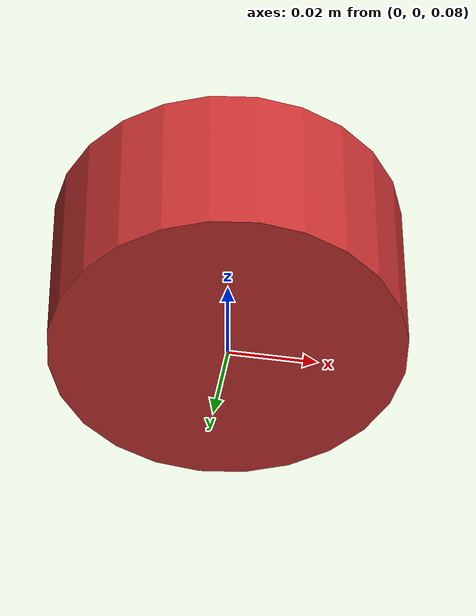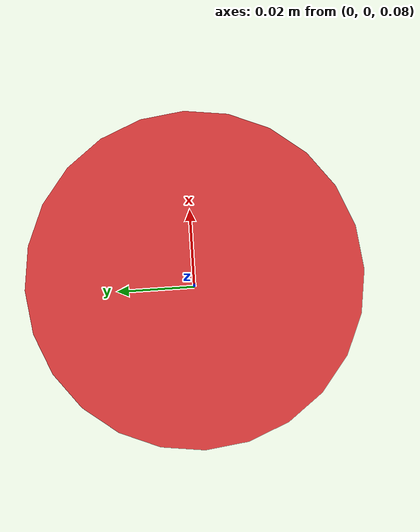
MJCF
<?xml version="1.0" encoding="utf-8"?>
<mujoco model="spring_button">
  <worldbody>
    <body>
      <body name="object" pos="0 0 0">
        <body name="base" pos="0 0 0" quat="1 0 0 0">
          <joint name="button_z" type="slide" axis="0 0 1"
                 range="-0.06 0" stiffness="200" damping="5" springref="0"/>
          <geom name="cap" type="cylinder" size="0.04 0.02"
                pos="0 0 0.10" rgba="0.8 0.2 0.2 1" group="0"
                friction="1 0.005 0.0001" density="200"/>
          <geom name="cap_vis" type="cylinder" size="0.04 0.02"
                pos="0 0 0.10" rgba="0.8 0.2 0.2 1" group="1"
                conaffinity="0" contype="0"
                friction="1 0.005 0.0001"/>
        </body>
      </body>

      <site name="bottom_site" pos="0 0 0.00" rgba="0 0 0 0" size="0.005"/>
      <site name="top_site"    pos="0 0 0.12" rgba="0 0 0 0" size="0.005"/>
      <site name="horizontal_radius_site" pos="0.04 0 0.10" rgba="0 0 0 0" size="0.04"/>
    </body>
  </worldbody>
</mujoco>
